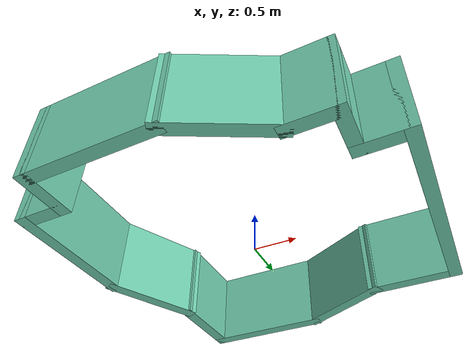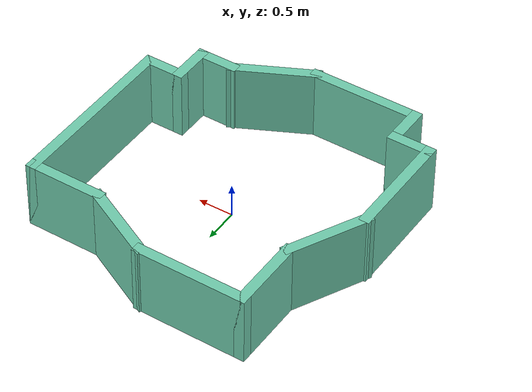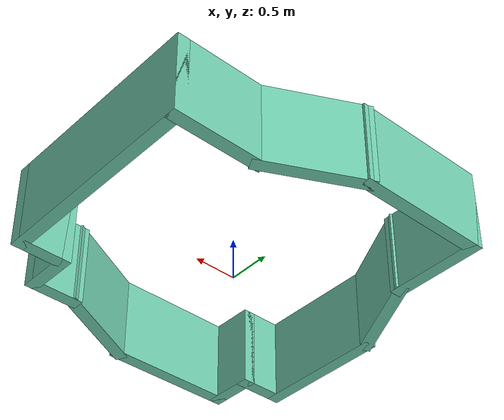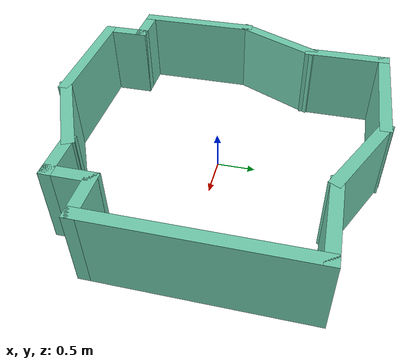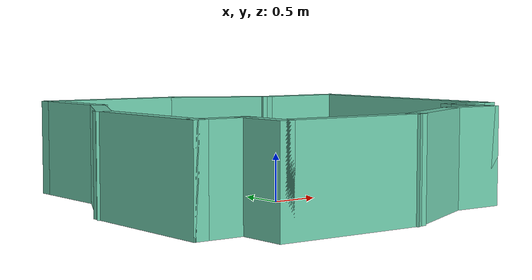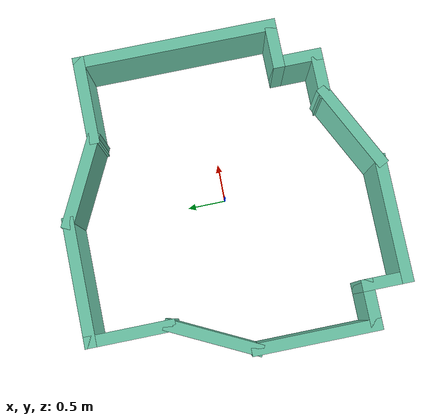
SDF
<?xml version='1.0'?>
<sdf version='1.6'>
  <model name='ModelRoom4'>
    <pose frame=''>-0.012811 0 0 0 -0 0</pose>
    <link name='Wall_0'>
      <collision name='Wall_0_Collision'>
        <geometry>
          <box>
            <size>0.65 0.15 1</size>
          </box>
        </geometry>
        <pose frame=''>0 0 0.5 0 -0 0</pose>
      </collision>
      <visual name='Wall_0_Visual'>
        <pose frame=''>0 0 0.5 0 -0 0</pose>
        <geometry>
          <box>
            <size>0.65 0.15 1</size>
          </box>
        </geometry>
        <material>
          <script>
            <uri>file://media/materials/scripts/gazebo.material</uri>
            <name>Gazebo/Grey</name>
          </script>
          <ambient>0.435294 0.796078 0.67451 1</ambient>
        </material>
      </visual>
      <pose frame=''>-1.48719 -1.75 0 0 0 -1.5708</pose>
    </link>
    <link name='Wall_13'>
      <collision name='Wall_13_Collision'>
        <geometry>
          <box>
            <size>1.15 0.15 1</size>
          </box>
        </geometry>
        <pose frame=''>0 0 0.5 0 -0 0</pose>
      </collision>
      <visual name='Wall_13_Visual'>
        <pose frame=''>0 0 0.5 0 -0 0</pose>
        <geometry>
          <box>
            <size>1.15 0.15 1</size>
          </box>
        </geometry>
        <material>
          <script>
            <uri>file://media/materials/scripts/gazebo.material</uri>
            <name>Gazebo/Grey</name>
          </script>
          <ambient>0.435294 0.796078 0.67451 1</ambient>
        </material>
      </visual>
      <pose frame=''>-1.48719 1.5 0 0 0 -1.5708</pose>
    </link>
    <link name='Wall_15'>
      <collision name='Wall_15_Collision'>
        <geometry>
          <box>
            <size>1.65 0.15 1</size>
          </box>
        </geometry>
        <pose frame=''>0 0 0.5 0 -0 0</pose>
      </collision>
      <visual name='Wall_15_Visual'>
        <pose frame=''>0 0 0.5 0 -0 0</pose>
        <geometry>
          <box>
            <size>1.65 0.15 1</size>
          </box>
        </geometry>
        <material>
          <script>
            <uri>file://media/materials/scripts/gazebo.material</uri>
            <name>Gazebo/Grey</name>
          </script>
          <ambient>0.435294 0.796078 0.67451 1</ambient>
        </material>
      </visual>
      <pose frame=''>-0.737189 2 0 0 -0 0</pose>
    </link>
    <link name='Wall_17'>
      <collision name='Wall_17_Collision'>
        <geometry>
          <box>
            <size>1.26803 0.15 1</size>
          </box>
        </geometry>
        <pose frame=''>0 0 0.5 0 -0 0</pose>
      </collision>
      <visual name='Wall_17_Visual'>
        <pose frame=''>0 0 0.5 0 -0 0</pose>
        <geometry>
          <box>
            <size>1.26803 0.15 1</size>
          </box>
        </geometry>
        <material>
          <script>
            <uri>file://media/materials/scripts/gazebo.material</uri>
            <name>Gazebo/Grey</name>
          </script>
          <ambient>0.435294 0.796078 0.67451 1</ambient>
        </material>
      </visual>
      <pose frame=''>0.512811 1.75 0 0 0 -0.463648</pose>
    </link>
    <link name='Wall_19'>
      <collision name='Wall_19_Collision'>
        <geometry>
          <box>
            <size>1.15 0.15 1</size>
          </box>
        </geometry>
        <pose frame=''>0 0 0.5 0 -0 0</pose>
      </collision>
      <visual name='Wall_19_Visual'>
        <pose frame=''>0 0 0.5 0 -0 0</pose>
        <geometry>
          <box>
            <size>1.15 0.15 1</size>
          </box>
        </geometry>
        <material>
          <script>
            <uri>file://media/materials/scripts/gazebo.material</uri>
            <name>Gazebo/Grey</name>
          </script>
          <ambient>0.435294 0.796078 0.67451 1</ambient>
        </material>
      </visual>
      <pose frame=''>1.51281 1.5 0 0 -0 0</pose>
    </link>
    <link name='Wall_2'>
      <collision name='Wall_2_Collision'>
        <geometry>
          <box>
            <size>0.65 0.15 1</size>
          </box>
        </geometry>
        <pose frame=''>0 0 0.5 0 -0 0</pose>
      </collision>
      <visual name='Wall_2_Visual'>
        <pose frame=''>0 0 0.5 0 -0 0</pose>
        <geometry>
          <box>
            <size>0.65 0.15 1</size>
          </box>
        </geometry>
        <material>
          <script>
            <uri>file://media/materials/scripts/gazebo.material</uri>
            <name>Gazebo/Grey</name>
          </script>
          <ambient>0.435294 0.796078 0.67451 1</ambient>
        </material>
      </visual>
      <pose frame=''>-1.73719 -1.5 0 0 -0 0</pose>
    </link>
    <link name='Wall_21'>
      <collision name='Wall_21_Collision'>
        <geometry>
          <box>
            <size>2.65 0.15 1</size>
          </box>
        </geometry>
        <pose frame=''>0 0 0.5 0 -0 0</pose>
      </collision>
      <visual name='Wall_21_Visual'>
        <pose frame=''>0 0 0.5 0 -0 0</pose>
        <geometry>
          <box>
            <size>2.65 0.15 1</size>
          </box>
        </geometry>
        <material>
          <script>
            <uri>file://media/materials/scripts/gazebo.material</uri>
            <name>Gazebo/Grey</name>
          </script>
          <ambient>0.435294 0.796078 0.67451 1</ambient>
        </material>
      </visual>
      <pose frame=''>2.01281 0.25 0 0 0 -1.5708</pose>
    </link>
    <link name='Wall_24'>
      <collision name='Wall_24_Collision'>
        <geometry>
          <box>
            <size>0.65 0.15 1</size>
          </box>
        </geometry>
        <pose frame=''>0 0 0.5 0 -0 0</pose>
      </collision>
      <visual name='Wall_24_Visual'>
        <pose frame=''>0 0 0.5 0 -0 0</pose>
        <geometry>
          <box>
            <size>0.65 0.15 1</size>
          </box>
        </geometry>
        <material>
          <script>
            <uri>file://media/materials/scripts/gazebo.material</uri>
            <name>Gazebo/Grey</name>
          </script>
          <ambient>0.435294 0.796078 0.67451 1</ambient>
        </material>
      </visual>
      <pose frame=''>1.76281 -1 0 0 -0 0</pose>
    </link>
    <link name='Wall_26'>
      <collision name='Wall_26_Collision'>
        <geometry>
          <box>
            <size>0.65 0.15 1</size>
          </box>
        </geometry>
        <pose frame=''>0 0 0.5 0 -0 0</pose>
      </collision>
      <visual name='Wall_26_Visual'>
        <pose frame=''>0 0 0.5 0 -0 0</pose>
        <geometry>
          <box>
            <size>0.65 0.15 1</size>
          </box>
        </geometry>
        <material>
          <script>
            <uri>file://media/materials/scripts/gazebo.material</uri>
            <name>Gazebo/Grey</name>
          </script>
          <ambient>0.435294 0.796078 0.67451 1</ambient>
        </material>
      </visual>
      <pose frame=''>1.51281 -1.25 0 0 0 -1.5708</pose>
    </link>
    <link name='Wall_29'>
      <collision name='Wall_29_Collision'>
        <geometry>
          <box>
            <size>0.65 0.15 1</size>
          </box>
        </geometry>
        <pose frame=''>0 0 0.5 0 -0 0</pose>
      </collision>
      <visual name='Wall_29_Visual'>
        <pose frame=''>0 0 0.5 0 -0 0</pose>
        <geometry>
          <box>
            <size>0.65 0.15 1</size>
          </box>
        </geometry>
        <material>
          <script>
            <uri>file://media/materials/scripts/gazebo.material</uri>
            <name>Gazebo/Grey</name>
          </script>
          <ambient>0.435294 0.796078 0.67451 1</ambient>
        </material>
      </visual>
      <pose frame=''>1.26281 -1.5 0 0 -0 0</pose>
    </link>
    <link name='Wall_31'>
      <collision name='Wall_31_Collision'>
        <geometry>
          <box>
            <size>1.26803 0.15 1</size>
          </box>
        </geometry>
        <pose frame=''>0 0 0.5 0 -0 0</pose>
      </collision>
      <visual name='Wall_31_Visual'>
        <pose frame=''>0 0 0.5 0 -0 0</pose>
        <geometry>
          <box>
            <size>1.26803 0.15 1</size>
          </box>
        </geometry>
        <material>
          <script>
            <uri>file://media/materials/scripts/gazebo.material</uri>
            <name>Gazebo/Grey</name>
          </script>
          <ambient>0.435294 0.796078 0.67451 1</ambient>
        </material>
      </visual>
      <pose frame=''>0.512811 -1.75 0 0 -0 0.463648</pose>
    </link>
    <link name='Wall_33'>
      <collision name='Wall_33_Collision'>
        <geometry>
          <box>
            <size>1.65 0.15 1</size>
          </box>
        </geometry>
        <pose frame=''>0 0 0.5 0 -0 0</pose>
      </collision>
      <visual name='Wall_33_Visual'>
        <pose frame=''>0 0 0.5 0 -0 0</pose>
        <geometry>
          <box>
            <size>1.65 0.15 1</size>
          </box>
        </geometry>
        <material>
          <script>
            <uri>file://media/materials/scripts/gazebo.material</uri>
            <name>Gazebo/Grey</name>
          </script>
          <ambient>0.435294 0.796078 0.67451 1</ambient>
        </material>
      </visual>
      <pose frame=''>-0.737189 -2 0 0 -0 0</pose>
    </link>
    <link name='Wall_6'>
      <collision name='Wall_6_Collision'>
        <geometry>
          <box>
            <size>1.65 0.15 1</size>
          </box>
        </geometry>
        <pose frame=''>0 0 0.5 0 -0 0</pose>
      </collision>
      <visual name='Wall_6_Visual'>
        <pose frame=''>0 0 0.5 0 -0 0</pose>
        <geometry>
          <box>
            <size>1.65 0.15 1</size>
          </box>
        </geometry>
        <material>
          <script>
            <uri>file://media/materials/scripts/gazebo.material</uri>
            <name>Gazebo/Grey</name>
          </script>
          <ambient>0.435294 0.796078 0.67451 1</ambient>
        </material>
      </visual>
      <pose frame=''>-1.98719 -0.75 0 0 0 -1.5708</pose>
    </link>
    <link name='Wall_8'>
      <collision name='Wall_8_Collision'>
        <geometry>
          <box>
            <size>1.26803 0.15 1</size>
          </box>
        </geometry>
        <pose frame=''>0 0 0.5 0 -0 0</pose>
      </collision>
      <visual name='Wall_8_Visual'>
        <pose frame=''>0 0 0.5 0 -0 0</pose>
        <geometry>
          <box>
            <size>1.26803 0.15 1</size>
          </box>
        </geometry>
        <material>
          <script>
            <uri>file://media/materials/scripts/gazebo.material</uri>
            <name>Gazebo/Grey</name>
          </script>
          <ambient>0.435294 0.796078 0.67451 1</ambient>
        </material>
      </visual>
      <pose frame=''>-1.73719 0.5 0 0 0 -2.03444</pose>
    </link>
    <static>1</static>
  </model>
</sdf>
